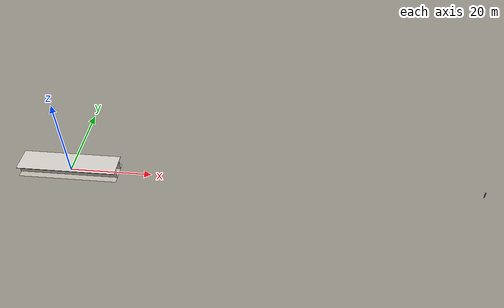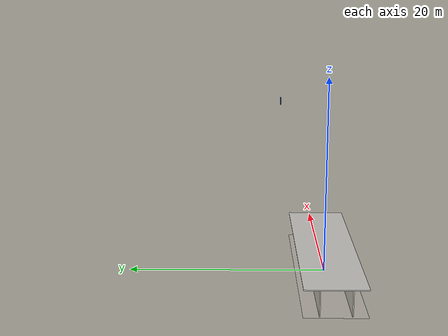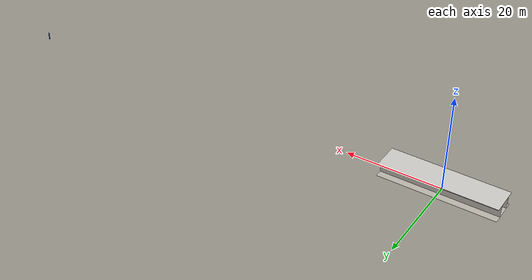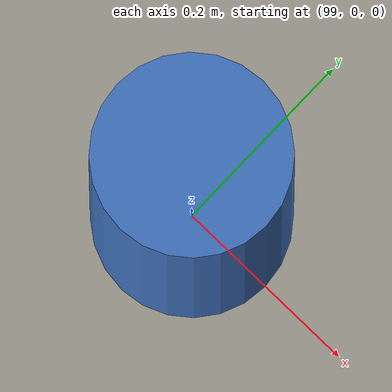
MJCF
<mujoco model="yahboom_x3">

  <compiler angle="radian" meshdir="." autolimits="true"/>

  <option timestep="0.004" gravity="0 0 -9.81" integrator="implicitfast" iterations="50" solver="Newton"/>

  <default>
    <joint damping="0.5" frictionloss="0.02"/>
    <geom friction="0.8 0.005 0.0001" condim="3" contype="1" conaffinity="1"/>
    <motor ctrlrange="-10 10" ctrllimited="true" gear="1"/>
  </default>

  <asset>
    <!-- Floor — vinyl tile checker pattern (hospital corridor) -->
    <texture name="floor_tex" type="2d" builtin="checker"
             width="512" height="512" rgb1="0.72 0.70 0.66" rgb2="0.80 0.78 0.74"/>
    <material name="floor_mat" texture="floor_tex" texrepeat="8 8" reflectance="0.08"/>

    <!-- Corridor walls — painted concrete / CMU block -->
    <texture name="wall_tex" type="2d" builtin="flat"
             width="64" height="64" rgb1="0.74 0.72 0.68"/>
    <material name="wall_mat" texture="wall_tex" reflectance="0.04"/>

    <!-- Ceiling — acoustic tile -->
    <texture name="ceil_tex" type="2d" builtin="flat"
             width="64" height="64" rgb1="0.84 0.83 0.81"/>
    <material name="ceil_mat" texture="ceil_tex" reflectance="0.12"/>

    <!-- Person / obstacle material -->
    <material name="person_mat" rgba="0.25 0.45 0.75 1.0"/>

    <material name="chassis_mat" rgba="0.2 0.2 0.2 1.0"/>
    <material name="wheel_mat"   rgba="0.05 0.05 0.05 1.0"/>
    <material name="lidar_mat"   rgba="0.0 0.3 0.8 1.0"/>
  </asset>

  <worldbody>

    <!-- ── Ambient + directional lighting (fluorescent ceiling) ──────────────── -->
    <light name="ambient"    pos="0 0 3"  dir="0 0 -1" diffuse="0.7 0.7 0.7"
           specular="0.1 0.1 0.1" castshadow="false" directional="true"/>
    <light name="strip_0"    pos="0  0 2.5" dir="0 0 -1" diffuse="0.5 0.5 0.45"
           specular="0.05 0.05 0.05" castshadow="false"/>
    <light name="strip_1"    pos="3  0 2.5" dir="0 0 -1" diffuse="0.4 0.4 0.35"
           specular="0.03 0.03 0.03" castshadow="false"/>
    <light name="strip_2"    pos="-3 0 2.5" dir="0 0 -1" diffuse="0.4 0.4 0.35"
           specular="0.03 0.03 0.03" castshadow="false"/>

    <!-- ── Floor ──────────────────────────────────────────────────────────────── -->
    <geom name="floor" type="plane" size="12 3 0.1" material="floor_mat"
          contype="1" conaffinity="1"/>

    <!-- ── Hospital corridor walls (contype=0: visual only, no robot collision) ─ -->
    <!-- Left wall (y = +1.5 m) -->
    <geom name="wall_left"  type="box" size="12 0.05 1.25"
          pos="0  1.5 1.25" material="wall_mat"
          contype="0" conaffinity="0"/>
    <!-- Right wall (y = -1.5 m) -->
    <geom name="wall_right" type="box" size="12 0.05 1.25"
          pos="0 -1.5 1.25" material="wall_mat"
          contype="0" conaffinity="0"/>
    <!-- Ceiling -->
    <geom name="ceiling"    type="box" size="12 3 0.05"
          pos="0 0 2.55" material="ceil_mat"
          contype="0" conaffinity="0"/>

    <!-- ── Robot body ──────────────────────────────────────────────────────────── -->
    <body name="base_link" pos="0 0 0.048">
      <freejoint name="root"/>
      <inertial mass="1.8" pos="0 0 0.04" diaginertia="0.010 0.014 0.020"/>

      <!-- Chassis -->
      <geom name="chassis" type="box" size="0.14 0.11 0.04"
            pos="0 0 0.04" material="chassis_mat"/>

      <!-- IMU site -->
      <site name="imu" pos="0 0 0.05" size="0.005"/>

      <!-- Camera site (ray-casting reference — kept for sensor use) -->
      <site name="camera_site" pos="0.10 0 0.082" euler="0 0 0" size="0.004"/>

      <camera name="camera" pos="0.10 0 0.082"
              xyaxes="0 -1 0 0 0 1" fovy="62"/>

      <!-- LiDAR site -->
      <site name="lidar" pos="0 0 0.105" size="0.01"/>
      <geom name="lidar_body" type="cylinder" size="0.038 0.02"
            pos="0 0 0.105" material="lidar_mat"/>

      <!-- Left wheel -->
      <body name="left_wheel_link" pos="0 0.1225 0">
        <joint name="left_wheel_joint" type="hinge"
               axis="0 1 0" limited="false" damping="0.001"/>
        <inertial mass="0.12" pos="0 0 0" diaginertia="0.00014 0.00014 0.00024"/>
        <geom name="left_wheel" type="cylinder" size="0.048 0.0125"
              euler="1.5708 0 0" material="wheel_mat"/>
      </body>

      <!-- Right wheel -->
      <body name="right_wheel_link" pos="0 -0.1225 0">
        <joint name="right_wheel_joint" type="hinge"
               axis="0 1 0" limited="false" damping="0.001"/>
        <inertial mass="0.12" pos="0 0 0" diaginertia="0.00014 0.00014 0.00024"/>
        <geom name="right_wheel" type="cylinder" size="0.048 0.0125"
              euler="1.5708 0 0" material="wheel_mat"/>
      </body>

      <!-- Front caster (fixed ball) -->
      <geom name="caster_front" type="sphere" size="0.018"
            pos="0.10 0 -0.030" friction="0.01 0.001 0.0001"/>

      <!-- Rear caster -->
      <geom name="caster_rear" type="sphere" size="0.018"
            pos="-0.10 0 -0.030" friction="0.01 0.001 0.0001"/>

    </body> <!-- base_link -->

    <!-- ── Dynamic obstacle placeholders (repositioned each episode) ─────────── -->
    <!-- obs_0 … obs_9: tall cylinders representing people/wheelchairs.          -->
    <!-- obstacle_env.py moves these via model.geom_pos before each episode.     -->
    <geom name="obs_0" type="cylinder" size="0.10 0.80" pos="99 0 0.80" material="person_mat" contype="1" conaffinity="1"/>
    <geom name="obs_1" type="cylinder" size="0.10 0.80" pos="99 0 0.80" material="person_mat" contype="1" conaffinity="1"/>
    <geom name="obs_2" type="cylinder" size="0.10 0.80" pos="99 0 0.80" material="person_mat" contype="1" conaffinity="1"/>
    <geom name="obs_3" type="cylinder" size="0.10 0.80" pos="99 0 0.80" material="person_mat" contype="1" conaffinity="1"/>
    <geom name="obs_4" type="cylinder" size="0.10 0.80" pos="99 0 0.80" material="person_mat" contype="1" conaffinity="1"/>
    <geom name="obs_5" type="cylinder" size="0.10 0.80" pos="99 0 0.80" material="person_mat" contype="1" conaffinity="1"/>
    <geom name="obs_6" type="cylinder" size="0.10 0.80" pos="99 0 0.80" material="person_mat" contype="1" conaffinity="1"/>
    <geom name="obs_7" type="cylinder" size="0.10 0.80" pos="99 0 0.80" material="person_mat" contype="1" conaffinity="1"/>
    <geom name="obs_8" type="cylinder" size="0.10 0.80" pos="99 0 0.80" material="person_mat" contype="1" conaffinity="1"/>
    <geom name="obs_9" type="cylinder" size="0.10 0.80" pos="99 0 0.80" material="person_mat" contype="1" conaffinity="1"/>

  </worldbody>

  <actuator>
    <!-- Wheel velocity control (rad/s) -->
    <velocity name="left_wheel_vel"  joint="left_wheel_joint"  kv="0.05" ctrlrange="-15 15"/>
    <velocity name="right_wheel_vel" joint="right_wheel_joint" kv="0.05" ctrlrange="-15 15"/>
  </actuator>

  <sensor>
    <!-- IMU -->
    <accelerometer name="accel" site="imu"/>
    <gyro          name="gyro"  site="imu"/>
    <framequat     name="orientation" objtype="site" objname="imu"/>

    <!-- Wheel encoders -->
    <jointpos  name="left_wheel_pos"  joint="left_wheel_joint"/>
    <jointpos  name="right_wheel_pos" joint="right_wheel_joint"/>
    <jointvel  name="left_wheel_vel_sensor"  joint="left_wheel_joint"/>
    <jointvel  name="right_wheel_vel_sensor" joint="right_wheel_joint"/>
  </sensor>

</mujoco>
